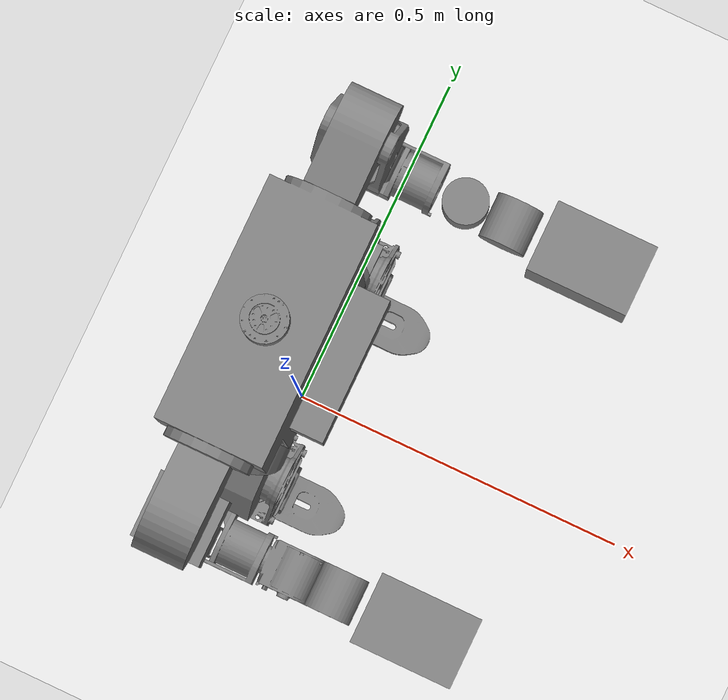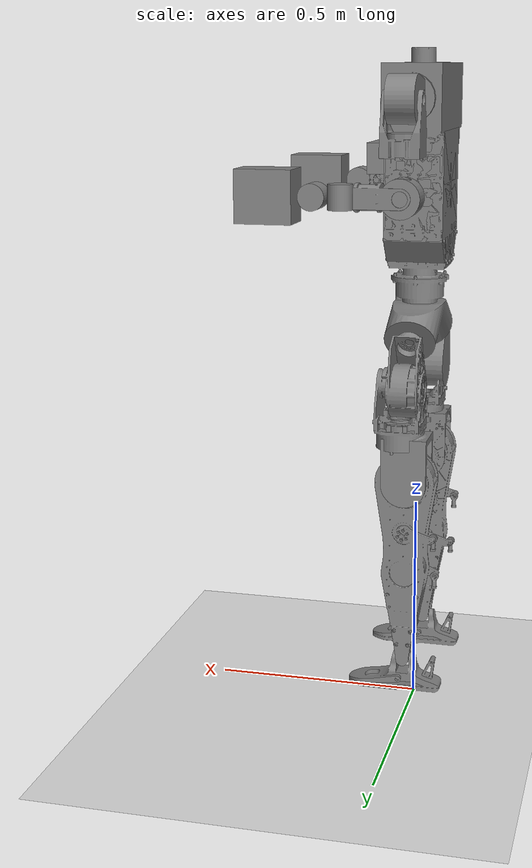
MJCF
<mujoco model="arm new 4">
  <compiler angle="radian" meshdir="../meshes/" />
  <asset>
    <mesh name="pelvis_link.STL" file="pelvis_link.STL" />
    <mesh name="waist_yaw_link.STL" file="waist_yaw_link.STL" />
    <mesh name="waist_roll_link.STL" file="waist_roll_link.STL" />
    <mesh name="torso_link.STL" file="torso_link.STL" />
    <mesh name="right_shoulder_pitch_link.STL" file="right_shoulder_pitch_link.STL" />
    <mesh name="right_shoulder_roll_link.STL" file="right_shoulder_roll_link.STL" />
    <mesh name="right_shoulder_yaw_link.STL" file="right_shoulder_yaw_link.STL" />
    <mesh name="right_elbow_link.STL" file="right_elbow_link.STL" />
    <mesh name="right_wrist_roll_link.STL" file="right_wrist_roll_link.STL" />
    <mesh name="right_wrist_yaw_link.STL" file="right_wrist_yaw_link.STL" />
    <mesh name="right_wrist_pitch_link.STL" file="right_wrist_pitch_link.STL" />
    <mesh name="left_shoulder_pitch_link.STL" file="left_shoulder_pitch_link.STL" />
    <mesh name="left_shoulder_roll_link.STL" file="left_shoulder_roll_link.STL" />
    <mesh name="left_shoulder_yaw_link.STL" file="left_shoulder_yaw_link.STL" />
    <mesh name="left_elbow_link.STL" file="left_elbow_link.STL" />
    <mesh name="left_wrist_roll_link.STL" file="left_wrist_roll_link.STL" />
    <mesh name="left_wrist_yaw_link.STL" file="left_wrist_yaw_link.STL" />
    <mesh name="left_wrist_pitch_link.STL" file="left_wrist_pitch_link.STL" />
    <mesh name="right_hip_pitch_link.STL" file="right_hip_pitch_link.STL" />
    <mesh name="right_hip_roll_link.STL" file="right_hip_roll_link.STL" />
    <mesh name="right_hip_yaw_link.STL" file="right_hip_yaw_link.STL" />
    <mesh name="right_knee_link.STL" file="right_knee_link.STL" />
    <mesh name="right_ankle_pitch_link.STL" file="right_ankle_pitch_link.STL" />
    <mesh name="right_ankle_roll_link.STL" file="right_ankle_roll_link.STL" />
    <mesh name="left_hip_pitch_link.STL" file="left_hip_pitch_link.STL" />
    <mesh name="left_hip_roll_link.STL" file="left_hip_roll_link.STL" />
    <mesh name="left_hip_yaw_link.STL" file="left_hip_yaw_link.STL" />
    <mesh name="left_knee_link.STL" file="left_knee_link.STL" />
    <mesh name="left_ankle_pitch_link.STL" file="left_ankle_pitch_link.STL" />
    <mesh name="left_ankle_roll_link.STL" file="left_ankle_roll_link.STL" />
  </asset>

  <default>
    <geom rgba="0.8 0.6 0.4 1"/>
  </default>

  <worldbody>
    <light pos="0 0 10" dir="0 0 -1" diffuse="1 1 1"/>
    <geom type="plane" size="5 5 0.1" rgba=".9 .9 .9 1"/>
    <body name="pelvis_link" pos="0 0 1" euler="0 0 0">
      <inertial pos="0 0 0" mass="2.59612258544044" diaginertia="0.0187 0.0044 0.0193"/>
      <geom pos="0.0000 0.0000 0.0000" euler="0.0000 0.0000 0.0000" rgba="0.4980 0.4980 0.4980 1.0" group="1" type="mesh" mesh="pelvis_link.STL" />
      <geom pos="0.0000 0.0000 0.0000" euler="0.0000 0.0000 0.0000" rgba="1 0 0 0.5" group="0" type="mesh" mesh="pelvis_link.STL" />
      <body name="waist_yaw_link" pos="0.0000 0.0000 0.0000" euler="0.0000 0.0000 0.0000">
        <joint name="waist_yaw_joint" type="hinge" axis="0.0000 0.0000 1.0000" range="-0.001 0.001" limited="true" damping="0" frictionloss="0" armature="0.02"/>
        <inertial pos="0 0 0" mass="1.34614103613669" diaginertia="0.0025 0.0025 0.0032"/>
        <geom pos="0.0000 0.0000 0.0000" euler="0.0000 0.0000 0.0000" rgba="0.4980 0.4980 0.4980 1.0" group="1" type="mesh" mesh="waist_yaw_link.STL" />
        <geom pos="0.0000 0.0000 0.0000" euler="0.0000 0.0000 0.0000" rgba="1 0 0 0.5" group="0" type="mesh" mesh="waist_yaw_link.STL" />
        <body name="waist_roll_link" pos="0.0000 0.0000 0.0960" euler="0.0000 0.0000 0.0000">
          <joint name="waist_roll_joint" type="hinge" axis="-1.0000 0.0000 0.0000" range="-0.001 0.001" limited="true" damping="0" frictionloss="0" armature="0"/>
          <inertial pos="0 0 0" mass="0.00904778684233861" diaginertia="1e-6 1e-6 1e-6"/>
          <geom pos="0.0000 0.0000 0.0000" euler="0.0000 0.0000 0.0000" rgba="0.4980 0.4980 0.4980 1.0" group="1" type="mesh" mesh="waist_roll_link.STL" />
          <geom pos="0.0000 0.0000 0.0000" euler="0.0000 0.0000 0.0000" rgba="1 0 0 0.5" group="0" type="mesh" mesh="waist_roll_link.STL" />
          <body name="torso_link" pos="0.0000 0.0000 0.0060" euler="0.0000 0.0000 0.0000">
            <joint name="torso_joint" type="hinge" axis="0.0000 0.0000 1.0000" range="-0.001 0.001" limited="true" damping="0" frictionloss="0" armature="0"/>
            <inertial pos="0 0 0" mass="15.0305076014071" diaginertia="0.3370 0.2728 0.1102"/>
            <geom pos="0.0000 0.0000 0.0000" euler="0.0000 0.0000 0.0000" rgba="0.4980 0.4980 0.4980 1.0" group="1" type="mesh" mesh="torso_link.STL" />
            <geom pos="0.0000 0.0000 0.0000" euler="0.0000 0.0000 0.0000" rgba="1 0 0 0.5" group="0" type="mesh" mesh="torso_link.STL" />
            <body name="right_shoulder_pitch_link" pos="0.0000 -0.1653 0.3727" euler="0.0000 0.0000 0.0000">
              <joint name="right_shoulder_pitch_joint" type="hinge" axis="0.0000 1.0000 0.0000" range="-2 2" damping="0" frictionloss="0" armature="0.02"/>
              <inertial pos="0 0 0" mass="0.756178654371522" diaginertia="0.0015 0.0008 0.0012"/>
              <geom pos="0.0000 0.0000 0.0000" euler="0.0000 0.0000 0.0000" rgba="0.4980 0.4980 0.4980 1.0" group="1" type="mesh" mesh="right_shoulder_pitch_link.STL" />
              <geom pos="0.0000 0.0000 0.0000" euler="0.0000 0.0000 0.0000" rgba="1 0 0 0.5" group="0" type="mesh" mesh="right_shoulder_pitch_link.STL" />
              <body name="right_shoulder_roll_link" pos="0.0000 -0.0780 0.0000" euler="0.0000 0.0000 0.0000">
                <joint name="right_shoulder_roll_joint" type="hinge" axis="1.0000 0.0000 0.0000" range="-3.14 0" damping="0" frictionloss="0" armature="0.02"/>
                <inertial pos="0 0 0" mass="0.44352" diaginertia="0.0004 0.0004 0.0005"/>
                <geom pos="0.0000 0.0000 0.0000" euler="0.0000 0.0000 0.0000" rgba="0.4980 0.4980 0.4980 1.0" group="1" type="mesh" mesh="right_shoulder_roll_link.STL" />
                <geom pos="0.0000 0.0000 0.0000" euler="0.0000 0.0000 0.0000" rgba="1 0 0 0.5" group="0" type="mesh" mesh="right_shoulder_roll_link.STL" />
                <body name="right_shoulder_yaw_link" pos="0.0000 0.0000 -0.1230" euler="0.0000 0.0000 0.0000">
                  <joint name="right_shoulder_yaw_joint" type="hinge" axis="0.0000 0.0000 1.0000" range="-1.5 0.5" damping="0" frictionloss="0" armature="0.012"/>
                  <inertial pos="0 0 0" mass="0.254258436472472" diaginertia="0.0002 0.0003 0.0003"/>
                  <geom pos="0.0000 0.0000 0.0000" euler="0.0000 0.0000 0.0000" rgba="0.4980 0.4980 0.4980 1.0" group="1" type="mesh" mesh="right_shoulder_yaw_link.STL" />
                  <geom pos="0.0000 0.0000 0.0000" euler="0.0000 0.0000 0.0000" rgba="1 0 0 0.5" group="0" type="mesh" mesh="right_shoulder_yaw_link.STL" />
                  <body name="right_elbow_link" pos="0.0000 0.0000 -0.0870" euler="0.0000 0.0000 0.0000">
                    <joint name="right_elbow_joint" type="hinge" axis="0.0000 -1.0000 0.0000" range="-3 0" damping="0" frictionloss="0" armature="0.012"/>
                    <inertial pos="0 0 0" mass="0.1836" diaginertia="0.0001 0.0001 0.0001"/>
                    <geom pos="0.0000 0.0000 0.0000" euler="0.0000 0.0000 0.0000" rgba="0.4980 0.4980 0.4980 1.0" group="1" type="mesh" mesh="right_elbow_link.STL" />
                    <geom pos="0.0000 0.0000 0.0000" euler="0.0000 0.0000 0.0000" rgba="1 0 0 0.5" group="0" type="mesh" mesh="right_elbow_link.STL" />
                    <body name="right_wrist_roll_link" pos="0.1025 0.0000 0.0000" euler="0.0000 0.0000 0.0000">
                      <joint name="right_wrist_roll_joint" type="hinge" axis="-1.0000 0.0000 0.0000" range="-1 1" damping="0" frictionloss="0" armature="0.001"/>
                      <inertial pos="0 0 0" mass="0.145450242074064" diaginertia="0.0001 0.0001 0.0001"/>
                      <geom pos="0.0000 0.0000 0.0000" euler="0.0000 0.0000 0.0000" rgba="0.4980 0.4980 0.4980 1.0" group="1" type="mesh" mesh="right_wrist_roll_link.STL" />
                      <geom pos="0.0000 0.0000 0.0000" euler="0.0000 0.0000 0.0000" rgba="1 0 0 0.5" group="0" type="mesh" mesh="right_wrist_roll_link.STL" />
                      <body name="right_wrist_yaw_link" pos="0.0355 0.0000 0.0000" euler="0.0000 0.0000 0.0000">
                        <joint name="right_wrist_yaw_joint" type="hinge" axis="0.0000 0.0000 -1.0000" range="-1 1" damping="0" frictionloss="0" armature="0.001"/>
                        <inertial pos="0 0 0" mass="0.161163703129156" diaginertia="0.0001 0.0001 0.0001"/>
                        <geom pos="0.0000 0.0000 0.0000" euler="0.0000 0.0000 0.0000" rgba="0.4980 0.4980 0.4980 1.0" group="1" type="mesh" mesh="right_wrist_yaw_link.STL" />
                        <geom pos="0.0000 0.0000 0.0000" euler="0.0000 0.0000 0.0000" rgba="1 0 0 0.5" group="0" type="mesh" mesh="right_wrist_yaw_link.STL" />
                        <body name="right_wrist_pitch_link" pos="0.0600 0.0000 0.0000" euler="0.0000 0.0000 0.0000">
                          <joint name="right_wrist_pitch_joint" type="hinge" axis="0.0000 1.0000 0.0000" range="-0.5 0.5" damping="0" frictionloss="0" armature="0.001"/>
                          <inertial pos="0 0 0" mass="1.404" diaginertia="0.0026 0.0037 0.0029"/>
                          <geom pos="0.0000 0.0000 0.0000" euler="0.0000 0.0000 0.0000" rgba="0.4980 0.4980 0.4980 1.0" group="1" type="mesh" mesh="right_wrist_pitch_link.STL" />
                          <geom pos="0.0000 0.0000 0.0000" euler="0.0000 0.0000 0.0000" rgba="1 0 0 0.5" group="0" type="mesh" mesh="right_wrist_pitch_link.STL" />
                        </body>
                      </body>
                    </body>
                  </body>
                </body>
              </body>
            </body>
            <body name="left_shoulder_pitch_link" pos="0.0000 0.1653 0.3727" euler="0.0000 0.0000 0.0000">
              <joint name="left_shoulder_pitch_joint" type="hinge" axis="0.0000 1.0000 0.0000" range="-2 2" damping="0" frictionloss="0" armature="0.02"/>
              <inertial pos="0 0 0" mass="0.756178654371521" diaginertia="0.0015 0.0008 0.0012"/>
              <geom pos="0.0000 0.0000 0.0000" euler="0.0000 0.0000 0.0000" rgba="0.4980 0.4980 0.4980 1.0" group="1" type="mesh" mesh="left_shoulder_pitch_link.STL" />
              <geom pos="0.0000 0.0000 0.0000" euler="0.0000 0.0000 0.0000" rgba="1 0 0 0.5" group="0" type="mesh" mesh="left_shoulder_pitch_link.STL" />
              <body name="left_shoulder_roll_link" pos="0.0000 0.0780 0.0000" euler="0.0000 0.0000 0.0000">
                <joint name="left_shoulder_roll_joint" type="hinge" axis="1.0000 0.0000 0.0000" range="0 3.14" damping="0" frictionloss="0" armature="0.02"/>
                <inertial pos="0 0 0" mass="0.443520000000001" diaginertia="0.0004 0.0004 0.0005"/>
                <geom pos="0.0000 0.0000 0.0000" euler="0.0000 0.0000 0.0000" rgba="0.4980 0.4980 0.4980 1.0" group="1" type="mesh" mesh="left_shoulder_roll_link.STL" />
                <geom pos="0.0000 0.0000 0.0000" euler="0.0000 0.0000 0.0000" rgba="1 0 0 0.5" group="0" type="mesh" mesh="left_shoulder_roll_link.STL" />
                <body name="left_shoulder_yaw_link" pos="0.0000 0.0000 -0.1230" euler="0.0000 0.0000 0.0000">
                  <joint name="left_shoulder_yaw_joint" type="hinge" axis="0.0000 0.0000 1.0000" range="-0.5 1.5" damping="0" frictionloss="0" armature="0.012"/>
                  <inertial pos="0 0 0" mass="0.254258436472472" diaginertia="0.0002 0.0003 0.0003"/>
                  <geom pos="0.0000 0.0000 0.0000" euler="0.0000 0.0000 0.0000" rgba="0.4980 0.4980 0.4980 1.0" group="1" type="mesh" mesh="left_shoulder_yaw_link.STL" />
                  <geom pos="0.0000 0.0000 0.0000" euler="0.0000 0.0000 0.0000" rgba="1 0 0 0.5" group="0" type="mesh" mesh="left_shoulder_yaw_link.STL" />
                  <body name="left_elbow_link" pos="0.0000 0.0000 -0.0870" euler="0.0000 0.0000 0.0000">
                    <joint name="left_elbow_joint" type="hinge" axis="0.0000 -1.0000 0.0000" range="-3 0" damping="0" frictionloss="0" armature="0.012"/>
                    <inertial pos="0 0 0" mass="0.1836" diaginertia="0.0001 0.0001 0.0001"/>
                    <geom pos="0.0000 0.0000 0.0000" euler="0.0000 0.0000 0.0000" rgba="0.4980 0.4980 0.4980 1.0" group="1" type="mesh" mesh="left_elbow_link.STL" />
                    <geom pos="0.0000 0.0000 0.0000" euler="0.0000 0.0000 0.0000" rgba="1 0 0 0.5" group="0" type="mesh" mesh="left_elbow_link.STL" />
                    <body name="left_wrist_roll_link" pos="0.1025 0.0000 0.0000" euler="0.0000 0.0000 0.0000">
                      <joint name="left_wrist_roll_joint" type="hinge" axis="-1.0000 0.0000 0.0000" range="-1 1" damping="0" frictionloss="0" armature="0.001"/>
                      <inertial pos="0 0 0" mass="0.145450242074064" diaginertia="0.0001 0.0001 0.0001"/>
                      <geom pos="0.0000 0.0000 0.0000" euler="0.0000 0.0000 0.0000" rgba="0.4980 0.4980 0.4980 1.0" group="1" type="mesh" mesh="left_wrist_roll_link.STL" />
                      <geom pos="0.0000 0.0000 0.0000" euler="0.0000 0.0000 0.0000" rgba="1 0 0 0.5" group="0" type="mesh" mesh="left_wrist_roll_link.STL" />
                      <body name="left_wrist_yaw_link" pos="0.0355 0.0000 0.0000" euler="0.0000 0.0000 0.0000">
                        <joint name="left_wrist_yaw_joint" type="hinge" axis="0.0000 0.0000 -1.0000" range="-1 1" damping="0" frictionloss="0" armature="0.001"/>
                        <inertial pos="0 0 0" mass="0.161163703129156" diaginertia="0.0001 0.0001 0.0001"/>
                        <geom pos="0.0000 0.0000 0.0000" euler="0.0000 0.0000 0.0000" rgba="0.4980 0.4980 0.4980 1.0" group="1" type="mesh" mesh="left_wrist_yaw_link.STL" />
                        <geom pos="0.0000 0.0000 0.0000" euler="0.0000 0.0000 0.0000" rgba="1 0 0 0.5" group="0" type="mesh" mesh="left_wrist_yaw_link.STL" />
                        <body name="left_wrist_pitch_link" pos="0.0600 0.0000 0.0000" euler="0.0000 0.0000 0.0000">
                          <joint name="left_wrist_pitch_joint" type="hinge" axis="0.0000 1.0000 0.0000" range="-0.5 0.5" damping="0" frictionloss="0" armature="0.001"/>
                          <inertial pos="0 0 0" mass="1.404" diaginertia="0.0026 0.0037 0.0029"/>
                          <geom pos="0.0000 0.0000 0.0000" euler="0.0000 0.0000 0.0000" rgba="0.4980 0.4980 0.4980 1.0" group="1" type="mesh" mesh="left_wrist_pitch_link.STL" />
                          <geom pos="0.0000 0.0000 0.0000" euler="0.0000 0.0000 0.0000" rgba="1 0 0 0.5" group="0" type="mesh" mesh="left_wrist_pitch_link.STL" />
                        </body>
                      </body>
                    </body>
                  </body>
                </body>
              </body>
            </body>
          </body>
        </body>
      </body>
      <body name="right_hip_pitch_link" pos="0.0000 -0.1272 -0.0734" euler="0.5236 0.0000 0.0000">
        <joint name="right_hip_pitch_joint" type="hinge" axis="0.0000 -1.0000 0.0000" range="-1 1" damping="0" frictionloss="0" armature="0.04"/>
        <inertial pos="0 0 0" mass="1.48627427894323" diaginertia="0.0044 0.0039 0.0025"/>
        <geom pos="0.0000 0.0000 0.0000" euler="0.0000 0.0000 0.0000" rgba="0.4980 0.4980 0.4980 1.0" group="1" type="mesh" mesh="right_hip_pitch_link.STL" />
        <geom pos="0.0000 0.0000 0.0000" euler="0.0000 0.0000 0.0000" rgba="1 0 0 0.5" group="0" type="mesh" mesh="right_hip_pitch_link.STL" />
        <body name="right_hip_roll_link" pos="0.0450 -0.0628 -0.0779" euler="-0.5236 0.0000 0.0000">
          <joint name="right_hip_roll_joint" type="hinge" axis="-1.0000 0.0000 0.0000" range="-0.5 1" damping="0" frictionloss="0" armature="0.04"/>
          <inertial pos="0 0 0" mass="0.657909596250466" diaginertia="0.0017 0.0019 0.0014"/>
          <geom pos="0.0000 0.0000 0.0000" euler="0.0000 0.0000 0.0000" rgba="0.4980 0.4980 0.4980 1.0" group="1" type="mesh" mesh="right_hip_roll_link.STL" />
          <geom pos="0.0000 0.0000 0.0000" euler="0.0000 0.0000 0.0000" rgba="1 0 0 0.5" group="0" type="mesh" mesh="right_hip_roll_link.STL" />
          <body name="right_hip_yaw_link" pos="-0.0450 0.0000 -0.1150" euler="0.0000 0.0000 0.0000">
            <joint name="right_hip_yaw_joint" type="hinge" axis="0.0000 0.0000 -1.0000" range="-0.5 0.5" damping="0" frictionloss="0" armature="0.02"/>
            <inertial pos="0 0 0" mass="0.558150874810085" diaginertia="0.0021 0.0018 0.0013"/>
            <geom pos="0.0000 0.0000 0.0000" euler="0.0000 0.0000 0.0000" rgba="0.4980 0.4980 0.4980 1.0" group="1" type="mesh" mesh="right_hip_yaw_link.STL" />
            <geom pos="0.0000 0.0000 0.0000" euler="0.0000 0.0000 0.0000" rgba="1 0 0 0.5" group="0" type="mesh" mesh="right_hip_yaw_link.STL" />
            <body name="right_knee_link" pos="0.0000 -0.0350 -0.1137" euler="0.0000 0.0000 0.0000">
              <joint name="right_knee_joint" type="hinge" axis="0.0000 1.0000 0.0000" range="-0.5 1" damping="0" frictionloss="0" armature="0.04"/>
              <inertial pos="0 0 0" mass="3.1242416304843" diaginertia="0.0534 0.0551 0.0042"/>
              <geom pos="0.0000 0.0000 0.0000" euler="0.0000 0.0000 0.0000" rgba="0.4980 0.4980 0.4980 1.0" group="1" type="mesh" mesh="right_knee_link.STL" />
              <geom pos="0.0000 0.0000 0.0000" euler="0.0000 0.0000 0.0000" rgba="1 0 0 0.5" group="0" type="mesh" mesh="right_knee_link.STL" />
              <body name="right_ankle_pitch_link" pos="0.0000 0.0350 -0.4335" euler="0.0000 0.0000 0.0000">
                <joint name="right_ankle_pitch_joint" type="hinge" axis="0.0000 -1.0000 0.0000" range="-0.5 0.5" damping="0" frictionloss="0" armature="0.012"/>
                <inertial pos="0 0 0" mass="0.012" diaginertia="1e-6 1e-6 1e-6"/>
                <geom pos="0.0000 0.0000 0.0000" euler="0.0000 0.0000 0.0000" rgba="0.4980 0.4980 0.4980 1.0" group="1" type="mesh" mesh="right_ankle_pitch_link.STL" />
                <geom pos="0.0000 0.0000 0.0000" euler="0.0000 0.0000 0.0000" rgba="1 0 0 0.5" group="0" type="mesh" mesh="right_ankle_pitch_link.STL" />
                <body name="right_ankle_roll_link" pos="0.0000 0.0000 -0.0150" euler="0.0000 0.0000 0.0000">
                  <joint name="right_ankle_roll_joint" type="hinge" axis="-1.0000 0.0000 0.0000" range="-0.5 0.5" damping="0" frictionloss="0" armature="0.012"/>
                  <inertial pos="0 0 0" mass="0.2058" diaginertia="0.0001 0.0008 0.0008"/>
                  <geom pos="0.0000 0.0000 0.0000" euler="0.0000 0.0000 0.0000" rgba="0.4980 0.4980 0.4980 1.0" group="1" type="mesh" mesh="right_ankle_roll_link.STL" />
                  <geom pos="0.0000 0.0000 0.0000" euler="0.0000 0.0000 0.0000" rgba="1 0 0 0.5" group="0" type="mesh" mesh="right_ankle_roll_link.STL" />
                </body>
              </body>
            </body>
          </body>
        </body>
      </body>
      <body name="left_hip_pitch_link" pos="0.0000 0.1272 -0.0734" euler="-0.5236 0.0000 0.0000">
        <joint name="0_left_hip_pitch_joint" type="hinge" axis="0.0000 1.0000 0.0000" range="-1 1" damping="0" frictionloss="0" armature="0.04"/>
        <inertial pos="0 0 0" mass="1.48627427894323" diaginertia="0.0044 0.0039 0.0025"/>
        <geom pos="0.0000 0.0000 0.0000" euler="0.0000 0.0000 0.0000" rgba="0.4980 0.4980 0.4980 1.0" group="1" type="mesh" mesh="left_hip_pitch_link.STL" />
        <geom pos="0.0000 0.0000 0.0000" euler="0.0000 0.0000 0.0000" rgba="1 0 0 0.5" group="0" type="mesh" mesh="left_hip_pitch_link.STL" />
        <body name="left_hip_roll_link" pos="0.0450 0.0628 -0.0779" euler="0.5236 0.0000 0.0000">
          <joint name="left_hip_roll_joint" type="hinge" axis="1.0000 0.0000 0.0000" range="-0.5 1" damping="0" frictionloss="0" armature="0.04"/>
          <inertial pos="0 0 0" mass="0.657909596250466" diaginertia="0.0017 0.0019 0.0014"/>
          <geom pos="0.0000 0.0000 0.0000" euler="0.0000 0.0000 0.0000" rgba="0.4980 0.4980 0.4980 1.0" group="1" type="mesh" mesh="left_hip_roll_link.STL" />
          <geom pos="0.0000 0.0000 0.0000" euler="0.0000 0.0000 0.0000" rgba="1 0 0 0.5" group="0" type="mesh" mesh="left_hip_roll_link.STL" />
          <body name="left_hip_yaw_link" pos="-0.0450 0.0000 -0.1150" euler="0.0000 0.0000 0.0000">
            <joint name="left_hip_yaw_joint" type="hinge" axis="0.0000 0.0000 -1.0000" range="-0.5 0.5" damping="0" frictionloss="0" armature="0.02"/>
            <inertial pos="0 0 0" mass="0.558150874810084" diaginertia="0.0021 0.0018 0.0013"/>
            <geom pos="0.0000 0.0000 0.0000" euler="0.0000 0.0000 0.0000" rgba="0.4980 0.4980 0.4980 1.0" group="1" type="mesh" mesh="left_hip_yaw_link.STL" />
            <geom pos="0.0000 0.0000 0.0000" euler="0.0000 0.0000 0.0000" rgba="1 0 0 0.5" group="0" type="mesh" mesh="left_hip_yaw_link.STL" />
            <body name="left_knee_link" pos="0.0000 0.0350 -0.1137" euler="0.0000 0.0000 0.0000">
              <joint name="left_knee_joint" type="hinge" axis="0.0000 1.0000 0.0000" range="-0.5 1" damping="0" frictionloss="0" armature="0.04"/>
              <inertial pos="0 0 0" mass="3.1244862763748" diaginertia="0.0535 0.0551 0.0042"/>
              <geom pos="0.0000 0.0000 0.0000" euler="0.0000 0.0000 0.0000" rgba="0.4980 0.4980 0.4980 1.0" group="1" type="mesh" mesh="left_knee_link.STL" />
              <geom pos="0.0000 0.0000 0.0000" euler="0.0000 0.0000 0.0000" rgba="1 0 0 0.5" group="0" type="mesh" mesh="left_knee_link.STL" />
              <body name="left_ankle_pitch_link" pos="0.0000 -0.0350 -0.4335" euler="0.0000 0.0000 0.0000">
                <joint name="left_ankle_pitch_joint" type="hinge" axis="0.0000 -1.0000 0.0000" range="-0.5 0.5" damping="0" frictionloss="0" armature="0.012"/>
                <inertial pos="0 0 0" mass="0.012" diaginertia="1e-6 1e-6 1e-6"/>
                <geom pos="0.0000 0.0000 0.0000" euler="0.0000 0.0000 0.0000" rgba="0.4980 0.4980 0.4980 1.0" group="1" type="mesh" mesh="left_ankle_pitch_link.STL" />
                <geom pos="0.0000 0.0000 0.0000" euler="0.0000 0.0000 0.0000" rgba="1 0 0 0.5" group="0" type="mesh" mesh="left_ankle_pitch_link.STL" />
                <body name="left_ankle_roll_link" pos="0.0000 0.0000 -0.0150" euler="0.0000 0.0000 0.0000">
                  <joint name="left_ankle_roll_joint" type="hinge" axis="-1.0000 0.0000 0.0000" range="-0.5 0.5" damping="0" frictionloss="0" armature="0.012"/>
                  <inertial pos="0 0 0" mass="0.2058" diaginertia="0.0001 0.0008 0.0008"/>
                  <geom pos="0.0000 0.0000 0.0000" euler="0.0000 0.0000 0.0000" rgba="0.4980 0.4980 0.4980 1.0" group="1" type="mesh" mesh="left_ankle_roll_link.STL" />
                  <geom pos="0.0000 0.0000 0.0000" euler="0.0000 0.0000 0.0000" rgba="1 0 0 0.5" group="0" type="mesh" mesh="left_ankle_roll_link.STL" />
                </body>
              </body>
            </body>
          </body>
        </body>
      </body>
    </body>
  </worldbody>
  <actuator>
    <position name="waist_yaw_joint_servo" joint="waist_yaw_joint" kp="50" />
    <position name="waist_roll_joint_servo" joint="waist_roll_joint" kp="50" />
    <position name="torso_joint_servo" joint="torso_joint" kp="50" />
    <position name="right_shoulder_pitch_joint_servo" joint="right_shoulder_pitch_joint" kp="50" />
    <position name="right_shoulder_roll_joint_servo" joint="right_shoulder_roll_joint" kp="50" />
    <position name="right_shoulder_yaw_joint_servo" joint="right_shoulder_yaw_joint" kp="50" />
    <position name="right_elbow_joint_servo" joint="right_elbow_joint" kp="50" />
    <position name="right_wrist_roll_joint_servo" joint="right_wrist_roll_joint" kp="50" />
    <position name="right_wrist_yaw_joint_servo" joint="right_wrist_yaw_joint" kp="50" />
    <position name="right_wrist_pitch_joint_servo" joint="right_wrist_pitch_joint" kp="50" />
    <position name="left_shoulder_pitch_joint_servo" joint="left_shoulder_pitch_joint" kp="50" />
    <position name="left_shoulder_roll_joint_servo" joint="left_shoulder_roll_joint" kp="50" />
    <position name="left_shoulder_yaw_joint_servo" joint="left_shoulder_yaw_joint" kp="50" />
    <position name="left_elbow_joint_servo" joint="left_elbow_joint" kp="50" />
    <position name="left_wrist_roll_joint_servo" joint="left_wrist_roll_joint" kp="50" />
    <position name="left_wrist_yaw_joint_servo" joint="left_wrist_yaw_joint" kp="50" />
    <position name="left_wrist_pitch_joint_servo" joint="left_wrist_pitch_joint" kp="50" />
    <position name="right_hip_pitch_joint_servo" joint="right_hip_pitch_joint" kp="50" />
    <position name="right_hip_roll_joint_servo" joint="right_hip_roll_joint" kp="50" />
    <position name="right_hip_yaw_joint_servo" joint="right_hip_yaw_joint" kp="50" />
    <position name="right_knee_joint_servo" joint="right_knee_joint" kp="50" />
    <position name="right_ankle_pitch_joint_servo" joint="right_ankle_pitch_joint" kp="50" />
    <position name="right_ankle_roll_joint_servo" joint="right_ankle_roll_joint" kp="50" />
    <position name="0_left_hip_pitch_joint_servo" joint="0_left_hip_pitch_joint" kp="50" />
    <position name="left_hip_roll_joint_servo" joint="left_hip_roll_joint" kp="50" />
    <position name="left_hip_yaw_joint_servo" joint="left_hip_yaw_joint" kp="50" />
    <position name="left_knee_joint_servo" joint="left_knee_joint" kp="50" />
    <position name="left_ankle_pitch_joint_servo" joint="left_ankle_pitch_joint" kp="50" />
    <position name="left_ankle_roll_joint_servo" joint="left_ankle_roll_joint" kp="50" />
  </actuator>
</mujoco>
